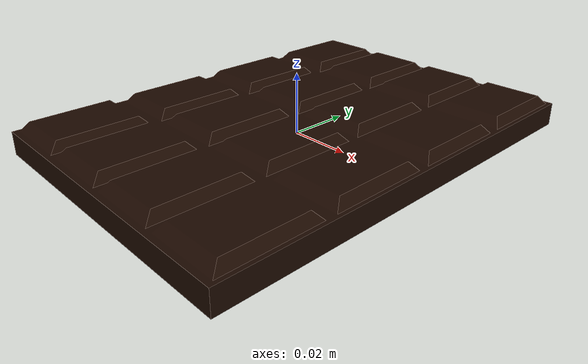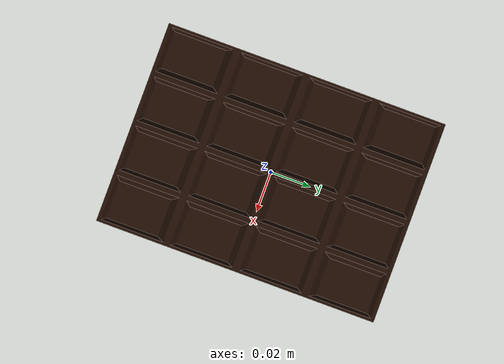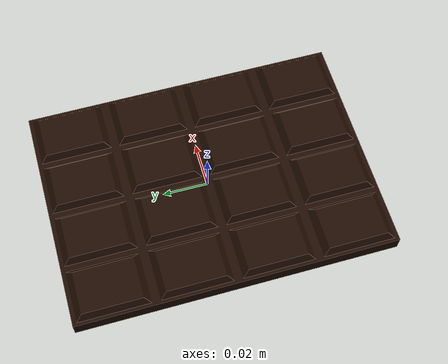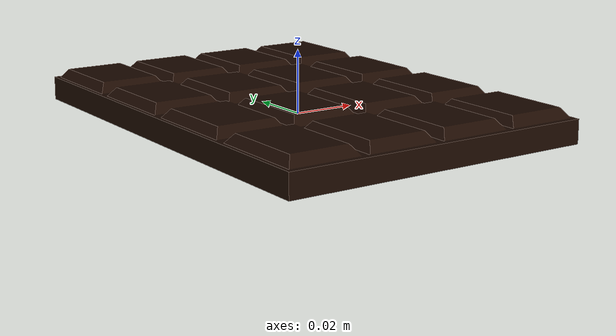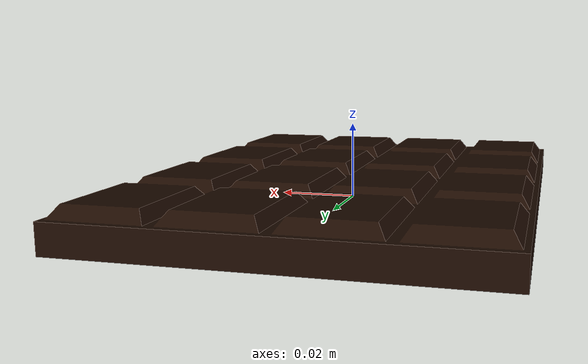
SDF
<?xml version="1.0" ?>
<sdf version="1.5">
  <model name="chocolate_bar">
    <link name="link">
	<inertial>
          <mass>0.1</mass>
          <pose>0 0 0.002 0 0 0</pose>
          <inertia>
            <ixx>0.000163</ixx>
            <iyy>0.000085</iyy>
            <izz>0.000247</izz>
            <ixy>0</ixy>
            <ixz>0</ixz>
            <iyz>0</iyz>
          </inertia>
        </inertial>
      <collision name="collision">
        <geometry>
          <mesh>
            <uri>model://chocolate_bar/meshes/chocolate_bar.dae</uri>
            <scale>1 1 1</scale>
          </mesh>
        </geometry>
      </collision>
      <visual name="visual">
        <geometry>
          <mesh>
            <uri>model://chocolate_bar/meshes/chocolate_bar.dae</uri>
          </mesh>
        </geometry>
      </visual>
    </link>
  </model>
</sdf>
